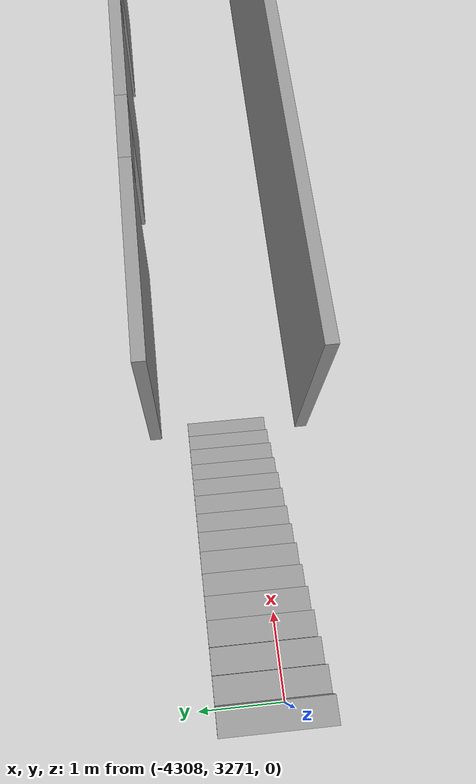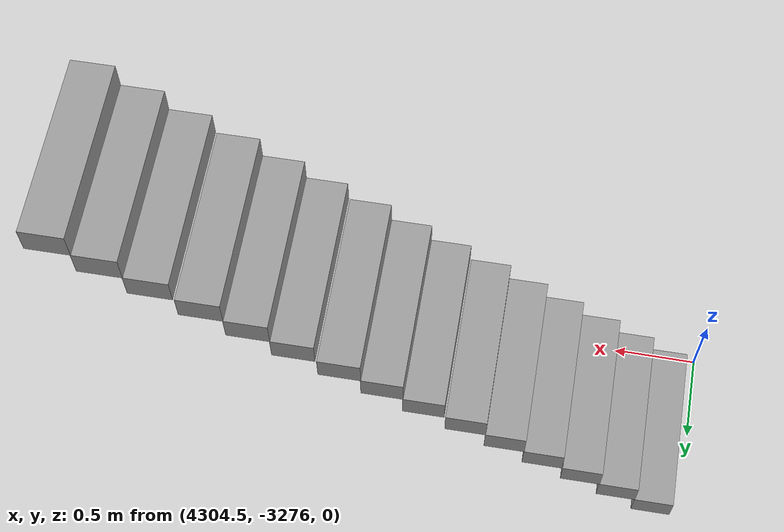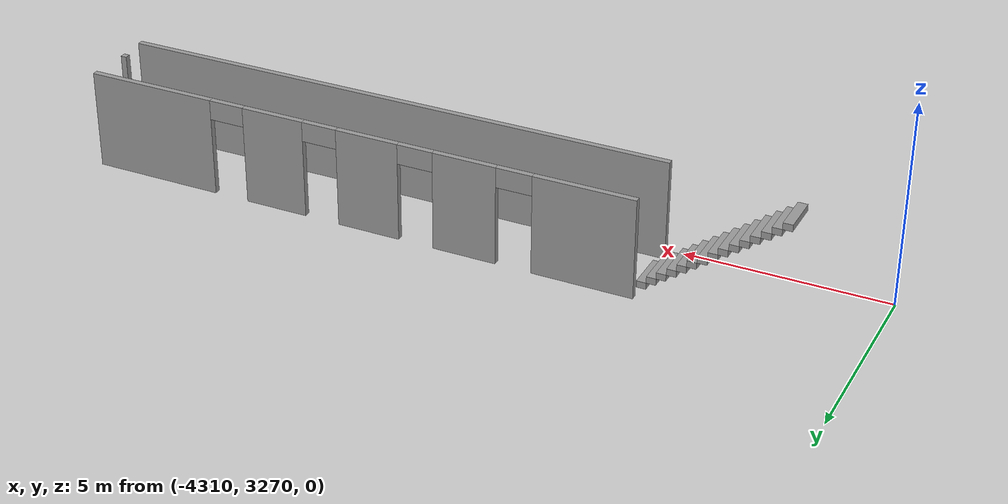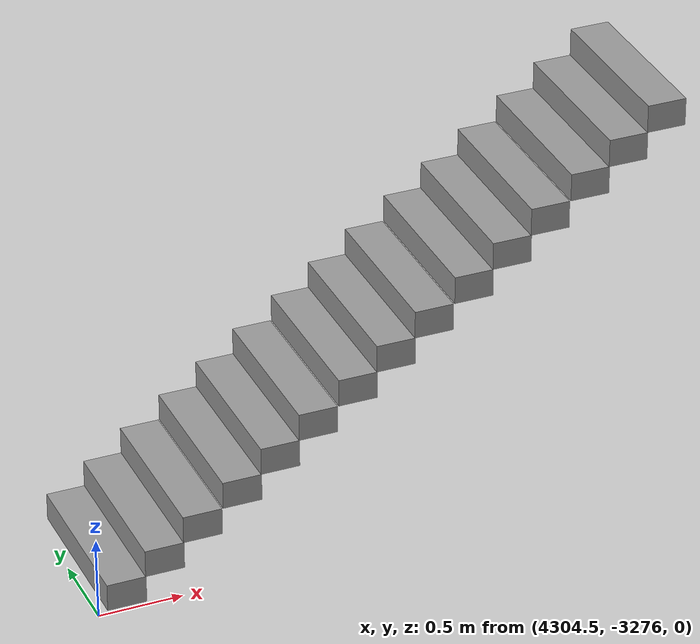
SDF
<?xml version="1.0" ?>
<sdf version="1.6">
  <world name="usta_test">

    <!-- Iluminación y suelo base -->
    <include><uri>model://sun</uri></include>
    <include><uri>model://ground_plane</uri></include>

    <!-- Tu modelo del edificio USTA -->
    <include>
      <uri>model://Prueba1</uri>
      <pose>0 0 0 0 0 0</pose>
    </include>

    <!-- Configuración de física estándar -->
    <physics type="ode">
      <max_step_size>0.001</max_step_size>
      <real_time_update_rate>1000</real_time_update_rate>
    </physics>

  </world>
</sdf>

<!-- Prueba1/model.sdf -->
<sdf version='1.7'>
  <model name='Prueba1'>
    <pose>4294.7 -3275.97 0 0 -0 0</pose>
    <link name='Stairs_2'>
      <visual name='Stairs_2_Visual_0'>
        <pose>-4304.68 3271.32 0.083333 0 -0 -1.5708</pose>
        <geometry>
          <box>
            <size>1 0.233333 0.166667</size>
          </box>
        </geometry>
        <material>
          <script>
            <uri>file://media/materials/scripts/gazebo.material</uri>
            <name>Gazebo/Grey</name>
          </script>
          <ambient>1 1 1 1</ambient>
        </material>
        <meta>
          <layer>0</layer>
        </meta>
      </visual>
      <collision name='Stairs_2_Collision_0'>
        <geometry>
          <box>
            <size>1 0.233333 0.166667</size>
          </box>
        </geometry>
        <pose>-4304.68 3271.32 0.083333 0 -0 -1.5708</pose>
      </collision>
      <visual name='Stairs_2_Visual_1'>
        <pose>-4304.91 3271.32 0.25 0 -0 -1.5708</pose>
        <geometry>
          <box>
            <size>1 0.233333 0.166667</size>
          </box>
        </geometry>
        <material>
          <script>
            <uri>file://media/materials/scripts/gazebo.material</uri>
            <name>Gazebo/Grey</name>
          </script>
          <ambient>1 1 1 1</ambient>
        </material>
        <meta>
          <layer>0</layer>
        </meta>
      </visual>
      <collision name='Stairs_2_Collision_1'>
        <geometry>
          <box>
            <size>1 0.233333 0.166667</size>
          </box>
        </geometry>
        <pose>-4304.91 3271.32 0.25 0 -0 -1.5708</pose>
      </collision>
      <visual name='Stairs_2_Visual_2'>
        <pose>-4305.14 3271.32 0.416667 0 -0 -1.5708</pose>
        <geometry>
          <box>
            <size>1 0.233333 0.166667</size>
          </box>
        </geometry>
        <material>
          <script>
            <uri>file://media/materials/scripts/gazebo.material</uri>
            <name>Gazebo/Grey</name>
          </script>
          <ambient>1 1 1 1</ambient>
        </material>
        <meta>
          <layer>0</layer>
        </meta>
      </visual>
      <collision name='Stairs_2_Collision_2'>
        <geometry>
          <box>
            <size>1 0.233333 0.166667</size>
          </box>
        </geometry>
        <pose>-4305.14 3271.32 0.416667 0 -0 -1.5708</pose>
      </collision>
      <visual name='Stairs_2_Visual_3'>
        <pose>-4305.38 3271.32 0.583333 0 -0 -1.5708</pose>
        <geometry>
          <box>
            <size>1 0.233333 0.166667</size>
          </box>
        </geometry>
        <material>
          <script>
            <uri>file://media/materials/scripts/gazebo.material</uri>
            <name>Gazebo/Grey</name>
          </script>
          <ambient>1 1 1 1</ambient>
        </material>
        <meta>
          <layer>0</layer>
        </meta>
      </visual>
      <collision name='Stairs_2_Collision_3'>
        <geometry>
          <box>
            <size>1 0.233333 0.166667</size>
          </box>
        </geometry>
        <pose>-4305.38 3271.32 0.583333 0 -0 -1.5708</pose>
      </collision>
      <visual name='Stairs_2_Visual_4'>
        <pose>-4305.61 3271.32 0.75 0 -0 -1.5708</pose>
        <geometry>
          <box>
            <size>1 0.233333 0.166667</size>
          </box>
        </geometry>
        <material>
          <script>
            <uri>file://media/materials/scripts/gazebo.material</uri>
            <name>Gazebo/Grey</name>
          </script>
          <ambient>1 1 1 1</ambient>
        </material>
        <meta>
          <layer>0</layer>
        </meta>
      </visual>
      <collision name='Stairs_2_Collision_4'>
        <geometry>
          <box>
            <size>1 0.233333 0.166667</size>
          </box>
        </geometry>
        <pose>-4305.61 3271.32 0.75 0 -0 -1.5708</pose>
      </collision>
      <visual name='Stairs_2_Visual_5'>
        <pose>-4305.84 3271.32 0.916667 0 -0 -1.5708</pose>
        <geometry>
          <box>
            <size>1 0.233333 0.166667</size>
          </box>
        </geometry>
        <material>
          <script>
            <uri>file://media/materials/scripts/gazebo.material</uri>
            <name>Gazebo/Grey</name>
          </script>
          <ambient>1 1 1 1</ambient>
        </material>
        <meta>
          <layer>0</layer>
        </meta>
      </visual>
      <collision name='Stairs_2_Collision_5'>
        <geometry>
          <box>
            <size>1 0.233333 0.166667</size>
          </box>
        </geometry>
        <pose>-4305.84 3271.32 0.916667 0 -0 -1.5708</pose>
      </collision>
      <visual name='Stairs_2_Visual_6'>
        <pose>-4306.08 3271.32 1.08333 0 -0 -1.5708</pose>
        <geometry>
          <box>
            <size>1 0.233333 0.166667</size>
          </box>
        </geometry>
        <material>
          <script>
            <uri>file://media/materials/scripts/gazebo.material</uri>
            <name>Gazebo/Grey</name>
          </script>
          <ambient>1 1 1 1</ambient>
        </material>
        <meta>
          <layer>0</layer>
        </meta>
      </visual>
      <collision name='Stairs_2_Collision_6'>
        <geometry>
          <box>
            <size>1 0.233333 0.166667</size>
          </box>
        </geometry>
        <pose>-4306.08 3271.32 1.08333 0 -0 -1.5708</pose>
      </collision>
      <visual name='Stairs_2_Visual_7'>
        <pose>-4306.31 3271.32 1.25 0 -0 -1.5708</pose>
        <geometry>
          <box>
            <size>1 0.233333 0.166667</size>
          </box>
        </geometry>
        <material>
          <script>
            <uri>file://media/materials/scripts/gazebo.material</uri>
            <name>Gazebo/Grey</name>
          </script>
          <ambient>1 1 1 1</ambient>
        </material>
        <meta>
          <layer>0</layer>
        </meta>
      </visual>
      <collision name='Stairs_2_Collision_7'>
        <geometry>
          <box>
            <size>1 0.233333 0.166667</size>
          </box>
        </geometry>
        <pose>-4306.31 3271.32 1.25 0 -0 -1.5708</pose>
      </collision>
      <visual name='Stairs_2_Visual_8'>
        <pose>-4306.54 3271.32 1.41667 0 -0 -1.5708</pose>
        <geometry>
          <box>
            <size>1 0.233333 0.166667</size>
          </box>
        </geometry>
        <material>
          <script>
            <uri>file://media/materials/scripts/gazebo.material</uri>
            <name>Gazebo/Grey</name>
          </script>
          <ambient>1 1 1 1</ambient>
        </material>
        <meta>
          <layer>0</layer>
        </meta>
      </visual>
      <collision name='Stairs_2_Collision_8'>
        <geometry>
          <box>
            <size>1 0.233333 0.166667</size>
          </box>
        </geometry>
        <pose>-4306.54 3271.32 1.41667 0 -0 -1.5708</pose>
      </collision>
      <visual name='Stairs_2_Visual_9'>
        <pose>-4306.78 3271.32 1.58333 0 -0 -1.5708</pose>
        <geometry>
          <box>
            <size>1 0.233333 0.166667</size>
          </box>
        </geometry>
        <material>
          <script>
            <uri>file://media/materials/scripts/gazebo.material</uri>
            <name>Gazebo/Grey</name>
          </script>
          <ambient>1 1 1 1</ambient>
        </material>
        <meta>
          <layer>0</layer>
        </meta>
      </visual>
      <collision name='Stairs_2_Collision_9'>
        <geometry>
          <box>
            <size>1 0.233333 0.166667</size>
          </box>
        </geometry>
        <pose>-4306.78 3271.32 1.58333 0 -0 -1.5708</pose>
      </collision>
      <visual name='Stairs_2_Visual_10'>
        <pose>-4307.01 3271.32 1.75 0 -0 -1.5708</pose>
        <geometry>
          <box>
            <size>1 0.233333 0.166667</size>
          </box>
        </geometry>
        <material>
          <script>
            <uri>file://media/materials/scripts/gazebo.material</uri>
            <name>Gazebo/Grey</name>
          </script>
          <ambient>1 1 1 1</ambient>
        </material>
        <meta>
          <layer>0</layer>
        </meta>
      </visual>
      <collision name='Stairs_2_Collision_10'>
        <geometry>
          <box>
            <size>1 0.233333 0.166667</size>
          </box>
        </geometry>
        <pose>-4307.01 3271.32 1.75 0 -0 -1.5708</pose>
      </collision>
      <visual name='Stairs_2_Visual_11'>
        <pose>-4307.24 3271.32 1.91667 0 -0 -1.5708</pose>
        <geometry>
          <box>
            <size>1 0.233333 0.166667</size>
          </box>
        </geometry>
        <material>
          <script>
            <uri>file://media/materials/scripts/gazebo.material</uri>
            <name>Gazebo/Grey</name>
          </script>
          <ambient>1 1 1 1</ambient>
        </material>
        <meta>
          <layer>0</layer>
        </meta>
      </visual>
      <collision name='Stairs_2_Collision_11'>
        <geometry>
          <box>
            <size>1 0.233333 0.166667</size>
          </box>
        </geometry>
        <pose>-4307.24 3271.32 1.91667 0 -0 -1.5708</pose>
      </collision>
      <visual name='Stairs_2_Visual_12'>
        <pose>-4307.48 3271.32 2.08333 0 -0 -1.5708</pose>
        <geometry>
          <box>
            <size>1 0.233333 0.166667</size>
          </box>
        </geometry>
        <material>
          <script>
            <uri>file://media/materials/scripts/gazebo.material</uri>
            <name>Gazebo/Grey</name>
          </script>
          <ambient>1 1 1 1</ambient>
        </material>
        <meta>
          <layer>0</layer>
        </meta>
      </visual>
      <collision name='Stairs_2_Collision_12'>
        <geometry>
          <box>
            <size>1 0.233333 0.166667</size>
          </box>
        </geometry>
        <pose>-4307.48 3271.32 2.08333 0 -0 -1.5708</pose>
      </collision>
      <visual name='Stairs_2_Visual_13'>
        <pose>-4307.71 3271.32 2.25 0 -0 -1.5708</pose>
        <geometry>
          <box>
            <size>1 0.233333 0.166667</size>
          </box>
        </geometry>
        <material>
          <script>
            <uri>file://media/materials/scripts/gazebo.material</uri>
            <name>Gazebo/Grey</name>
          </script>
          <ambient>1 1 1 1</ambient>
        </material>
        <meta>
          <layer>0</layer>
        </meta>
      </visual>
      <collision name='Stairs_2_Collision_13'>
        <geometry>
          <box>
            <size>1 0.233333 0.166667</size>
          </box>
        </geometry>
        <pose>-4307.71 3271.32 2.25 0 -0 -1.5708</pose>
      </collision>
      <visual name='Stairs_2_Visual_14'>
        <pose>-4307.94 3271.32 2.41667 0 -0 -1.5708</pose>
        <geometry>
          <box>
            <size>1 0.233333 0.166667</size>
          </box>
        </geometry>
        <material>
          <script>
            <uri>file://media/materials/scripts/gazebo.material</uri>
            <name>Gazebo/Grey</name>
          </script>
          <ambient>1 1 1 1</ambient>
        </material>
        <meta>
          <layer>0</layer>
        </meta>
      </visual>
      <collision name='Stairs_2_Collision_14'>
        <geometry>
          <box>
            <size>1 0.233333 0.166667</size>
          </box>
        </geometry>
        <pose>-4307.94 3271.32 2.41667 0 -0 -1.5708</pose>
      </collision>
    </link>
    <link name='Stairs_4'>
      <visual name='Stairs_4_Visual_0'>
        <pose>4304.68 -3275.47 0.083333 0 -0 1.5708</pose>
        <geometry>
          <box>
            <size>1 0.233333 0.166667</size>
          </box>
        </geometry>
        <material>
          <script>
            <uri>file://media/materials/scripts/gazebo.material</uri>
            <name>Gazebo/Grey</name>
          </script>
          <ambient>1 1 1 1</ambient>
        </material>
        <meta>
          <layer>0</layer>
        </meta>
      </visual>
      <collision name='Stairs_4_Collision_0'>
        <geometry>
          <box>
            <size>1 0.233333 0.166667</size>
          </box>
        </geometry>
        <pose>4304.68 -3275.47 0.083333 0 -0 1.5708</pose>
      </collision>
      <visual name='Stairs_4_Visual_1'>
        <pose>4304.91 -3275.47 0.25 0 -0 1.5708</pose>
        <geometry>
          <box>
            <size>1 0.233333 0.166667</size>
          </box>
        </geometry>
        <material>
          <script>
            <uri>file://media/materials/scripts/gazebo.material</uri>
            <name>Gazebo/Grey</name>
          </script>
          <ambient>1 1 1 1</ambient>
        </material>
        <meta>
          <layer>0</layer>
        </meta>
      </visual>
      <collision name='Stairs_4_Collision_1'>
        <geometry>
          <box>
            <size>1 0.233333 0.166667</size>
          </box>
        </geometry>
        <pose>4304.91 -3275.47 0.25 0 -0 1.5708</pose>
      </collision>
      <visual name='Stairs_4_Visual_2'>
        <pose>4305.14 -3275.47 0.416667 0 -0 1.5708</pose>
        <geometry>
          <box>
            <size>1 0.233333 0.166667</size>
          </box>
        </geometry>
        <material>
          <script>
            <uri>file://media/materials/scripts/gazebo.material</uri>
            <name>Gazebo/Grey</name>
          </script>
          <ambient>1 1 1 1</ambient>
        </material>
        <meta>
          <layer>0</layer>
        </meta>
      </visual>
      <collision name='Stairs_4_Collision_2'>
        <geometry>
          <box>
            <size>1 0.233333 0.166667</size>
          </box>
        </geometry>
        <pose>4305.14 -3275.47 0.416667 0 -0 1.5708</pose>
      </collision>
      <visual name='Stairs_4_Visual_3'>
        <pose>4305.38 -3275.47 0.583333 0 -0 1.5708</pose>
        <geometry>
          <box>
            <size>1 0.233333 0.166667</size>
          </box>
        </geometry>
        <material>
          <script>
            <uri>file://media/materials/scripts/gazebo.material</uri>
            <name>Gazebo/Grey</name>
          </script>
          <ambient>1 1 1 1</ambient>
        </material>
        <meta>
          <layer>0</layer>
        </meta>
      </visual>
      <collision name='Stairs_4_Collision_3'>
        <geometry>
          <box>
            <size>1 0.233333 0.166667</size>
          </box>
        </geometry>
        <pose>4305.38 -3275.47 0.583333 0 -0 1.5708</pose>
      </collision>
      <visual name='Stairs_4_Visual_4'>
        <pose>4305.61 -3275.47 0.75 0 -0 1.5708</pose>
        <geometry>
          <box>
            <size>1 0.233333 0.166667</size>
          </box>
        </geometry>
        <material>
          <script>
            <uri>file://media/materials/scripts/gazebo.material</uri>
            <name>Gazebo/Grey</name>
          </script>
          <ambient>1 1 1 1</ambient>
        </material>
        <meta>
          <layer>0</layer>
        </meta>
      </visual>
      <collision name='Stairs_4_Collision_4'>
        <geometry>
          <box>
            <size>1 0.233333 0.166667</size>
          </box>
        </geometry>
        <pose>4305.61 -3275.47 0.75 0 -0 1.5708</pose>
      </collision>
      <visual name='Stairs_4_Visual_5'>
        <pose>4305.84 -3275.47 0.916667 0 -0 1.5708</pose>
        <geometry>
          <box>
            <size>1 0.233333 0.166667</size>
          </box>
        </geometry>
        <material>
          <script>
            <uri>file://media/materials/scripts/gazebo.material</uri>
            <name>Gazebo/Grey</name>
          </script>
          <ambient>1 1 1 1</ambient>
        </material>
        <meta>
          <layer>0</layer>
        </meta>
      </visual>
      <collision name='Stairs_4_Collision_5'>
        <geometry>
          <box>
            <size>1 0.233333 0.166667</size>
          </box>
        </geometry>
        <pose>4305.84 -3275.47 0.916667 0 -0 1.5708</pose>
      </collision>
      <visual name='Stairs_4_Visual_6'>
        <pose>4306.08 -3275.47 1.08333 0 -0 1.5708</pose>
        <geometry>
          <box>
            <size>1 0.233333 0.166667</size>
          </box>
        </geometry>
        <material>
          <script>
            <uri>file://media/materials/scripts/gazebo.material</uri>
            <name>Gazebo/Grey</name>
          </script>
          <ambient>1 1 1 1</ambient>
        </material>
        <meta>
          <layer>0</layer>
        </meta>
      </visual>
      <collision name='Stairs_4_Collision_6'>
        <geometry>
          <box>
            <size>1 0.233333 0.166667</size>
          </box>
        </geometry>
        <pose>4306.08 -3275.47 1.08333 0 -0 1.5708</pose>
      </collision>
      <visual name='Stairs_4_Visual_7'>
        <pose>4306.31 -3275.47 1.25 0 -0 1.5708</pose>
        <geometry>
          <box>
            <size>1 0.233333 0.166667</size>
          </box>
        </geometry>
        <material>
          <script>
            <uri>file://media/materials/scripts/gazebo.material</uri>
            <name>Gazebo/Grey</name>
          </script>
          <ambient>1 1 1 1</ambient>
        </material>
        <meta>
          <layer>0</layer>
        </meta>
      </visual>
      <collision name='Stairs_4_Collision_7'>
        <geometry>
          <box>
            <size>1 0.233333 0.166667</size>
          </box>
        </geometry>
        <pose>4306.31 -3275.47 1.25 0 -0 1.5708</pose>
      </collision>
      <visual name='Stairs_4_Visual_8'>
        <pose>4306.54 -3275.47 1.41667 0 -0 1.5708</pose>
        <geometry>
          <box>
            <size>1 0.233333 0.166667</size>
          </box>
        </geometry>
        <material>
          <script>
            <uri>file://media/materials/scripts/gazebo.material</uri>
            <name>Gazebo/Grey</name>
          </script>
          <ambient>1 1 1 1</ambient>
        </material>
        <meta>
          <layer>0</layer>
        </meta>
      </visual>
      <collision name='Stairs_4_Collision_8'>
        <geometry>
          <box>
            <size>1 0.233333 0.166667</size>
          </box>
        </geometry>
        <pose>4306.54 -3275.47 1.41667 0 -0 1.5708</pose>
      </collision>
      <visual name='Stairs_4_Visual_9'>
        <pose>4306.78 -3275.47 1.58333 0 -0 1.5708</pose>
        <geometry>
          <box>
            <size>1 0.233333 0.166667</size>
          </box>
        </geometry>
        <material>
          <script>
            <uri>file://media/materials/scripts/gazebo.material</uri>
            <name>Gazebo/Grey</name>
          </script>
          <ambient>1 1 1 1</ambient>
        </material>
        <meta>
          <layer>0</layer>
        </meta>
      </visual>
      <collision name='Stairs_4_Collision_9'>
        <geometry>
          <box>
            <size>1 0.233333 0.166667</size>
          </box>
        </geometry>
        <pose>4306.78 -3275.47 1.58333 0 -0 1.5708</pose>
      </collision>
      <visual name='Stairs_4_Visual_10'>
        <pose>4307.01 -3275.47 1.75 0 -0 1.5708</pose>
        <geometry>
          <box>
            <size>1 0.233333 0.166667</size>
          </box>
        </geometry>
        <material>
          <script>
            <uri>file://media/materials/scripts/gazebo.material</uri>
            <name>Gazebo/Grey</name>
          </script>
          <ambient>1 1 1 1</ambient>
        </material>
        <meta>
          <layer>0</layer>
        </meta>
      </visual>
      <collision name='Stairs_4_Collision_10'>
        <geometry>
          <box>
            <size>1 0.233333 0.166667</size>
          </box>
        </geometry>
        <pose>4307.01 -3275.47 1.75 0 -0 1.5708</pose>
      </collision>
      <visual name='Stairs_4_Visual_11'>
        <pose>4307.24 -3275.47 1.91667 0 -0 1.5708</pose>
        <geometry>
          <box>
            <size>1 0.233333 0.166667</size>
          </box>
        </geometry>
        <material>
          <script>
            <uri>file://media/materials/scripts/gazebo.material</uri>
            <name>Gazebo/Grey</name>
          </script>
          <ambient>1 1 1 1</ambient>
        </material>
        <meta>
          <layer>0</layer>
        </meta>
      </visual>
      <collision name='Stairs_4_Collision_11'>
        <geometry>
          <box>
            <size>1 0.233333 0.166667</size>
          </box>
        </geometry>
        <pose>4307.24 -3275.47 1.91667 0 -0 1.5708</pose>
      </collision>
      <visual name='Stairs_4_Visual_12'>
        <pose>4307.48 -3275.47 2.08333 0 -0 1.5708</pose>
        <geometry>
          <box>
            <size>1 0.233333 0.166667</size>
          </box>
        </geometry>
        <material>
          <script>
            <uri>file://media/materials/scripts/gazebo.material</uri>
            <name>Gazebo/Grey</name>
          </script>
          <ambient>1 1 1 1</ambient>
        </material>
        <meta>
          <layer>0</layer>
        </meta>
      </visual>
      <collision name='Stairs_4_Collision_12'>
        <geometry>
          <box>
            <size>1 0.233333 0.166667</size>
          </box>
        </geometry>
        <pose>4307.48 -3275.47 2.08333 0 -0 1.5708</pose>
      </collision>
      <visual name='Stairs_4_Visual_13'>
        <pose>4307.71 -3275.47 2.25 0 -0 1.5708</pose>
        <geometry>
          <box>
            <size>1 0.233333 0.166667</size>
          </box>
        </geometry>
        <material>
          <script>
            <uri>file://media/materials/scripts/gazebo.material</uri>
            <name>Gazebo/Grey</name>
          </script>
          <ambient>1 1 1 1</ambient>
        </material>
        <meta>
          <layer>0</layer>
        </meta>
      </visual>
      <collision name='Stairs_4_Collision_13'>
        <geometry>
          <box>
            <size>1 0.233333 0.166667</size>
          </box>
        </geometry>
        <pose>4307.71 -3275.47 2.25 0 -0 1.5708</pose>
      </collision>
      <visual name='Stairs_4_Visual_14'>
        <pose>4307.94 -3275.47 2.41667 0 -0 1.5708</pose>
        <geometry>
          <box>
            <size>1 0.233333 0.166667</size>
          </box>
        </geometry>
        <material>
          <script>
            <uri>file://media/materials/scripts/gazebo.material</uri>
            <name>Gazebo/Grey</name>
          </script>
          <ambient>1 1 1 1</ambient>
        </material>
        <meta>
          <layer>0</layer>
        </meta>
      </visual>
      <collision name='Stairs_4_Collision_14'>
        <geometry>
          <box>
            <size>1 0.233333 0.166667</size>
          </box>
        </geometry>
        <pose>4307.94 -3275.47 2.41667 0 -0 1.5708</pose>
      </collision>
    </link>
    <link name='Wall_12'>
      <collision name='Wall_12_Collision'>
        <geometry>
          <box>
            <size>0.15 0.15 2.5</size>
          </box>
        </geometry>
        <pose>0 0 1.25 0 -0 0</pose>
      </collision>
      <visual name='Wall_12_Visual'>
        <pose>0 0 1.25 0 -0 0</pose>
        <geometry>
          <box>
            <size>0.15 0.15 2.5</size>
          </box>
        </geometry>
        <material>
          <script>
            <uri>file://media/materials/scripts/gazebo.material</uri>
            <name>Gazebo/Grey</name>
          </script>
          <ambient>1 1 1 1</ambient>
        </material>
        <meta>
          <layer>0</layer>
        </meta>
      </visual>
      <pose>-4290.55 3271.14 0 0 -0 0</pose>
    </link>
    <link name='Wall_15'>
      <collision name='Wall_15_Collision'>
        <geometry>
          <box>
            <size>14.25 0.15 2.5</size>
          </box>
        </geometry>
        <pose>0 0 1.25 0 -0 0</pose>
      </collision>
      <visual name='Wall_15_Visual'>
        <pose>0 0 1.25 0 -0 0</pose>
        <geometry>
          <box>
            <size>14.25 0.15 2.5</size>
          </box>
        </geometry>
        <material>
          <script>
            <uri>file://media/materials/scripts/gazebo.material</uri>
            <name>Gazebo/Grey</name>
          </script>
          <ambient>1 1 1 1</ambient>
        </material>
        <meta>
          <layer>0</layer>
        </meta>
      </visual>
      <pose>-4297.56 3270.33 0 0 -0 0</pose>
    </link>
    <link name='Wall_8'>
      <pose>-4297.56 3272.25 0 0 -0 0</pose>
      <visual name='Wall_8_Visual_0'>
        <pose>-5.875 0 1.25 0 -0 0</pose>
        <geometry>
          <box>
            <size>2.5 0.15 2.5</size>
          </box>
        </geometry>
        <material>
          <script>
            <uri>file://media/materials/scripts/gazebo.material</uri>
            <name>Gazebo/Grey</name>
          </script>
          <ambient>1 1 1 1</ambient>
        </material>
        <meta>
          <layer>0</layer>
        </meta>
      </visual>
      <collision name='Wall_8_Collision_0'>
        <geometry>
          <box>
            <size>2.5 0.15 2.5</size>
          </box>
        </geometry>
        <pose>-5.875 0 1.25 0 -0 0</pose>
      </collision>
      <visual name='Wall_8_Visual_1'>
        <pose>-2.92725 0 1.25 0 -0 0</pose>
        <geometry>
          <box>
            <size>1.5955 0.15 2.5</size>
          </box>
        </geometry>
        <material>
          <script>
            <uri>file://media/materials/scripts/gazebo.material</uri>
            <name>Gazebo/Grey</name>
          </script>
          <ambient>1 1 1 1</ambient>
        </material>
        <meta>
          <layer>0</layer>
        </meta>
      </visual>
      <collision name='Wall_8_Collision_1'>
        <geometry>
          <box>
            <size>1.5955 0.15 2.5</size>
          </box>
        </geometry>
        <pose>-2.92725 0 1.25 0 -0 0</pose>
      </collision>
      <visual name='Wall_8_Visual_2'>
        <pose>-0.426 0 1.25 0 -0 0</pose>
        <geometry>
          <box>
            <size>1.607 0.15 2.5</size>
          </box>
        </geometry>
        <material>
          <script>
            <uri>file://media/materials/scripts/gazebo.material</uri>
            <name>Gazebo/Grey</name>
          </script>
          <ambient>1 1 1 1</ambient>
        </material>
        <meta>
          <layer>0</layer>
        </meta>
      </visual>
      <collision name='Wall_8_Collision_2'>
        <geometry>
          <box>
            <size>1.607 0.15 2.5</size>
          </box>
        </geometry>
        <pose>-0.426 0 1.25 0 -0 0</pose>
      </collision>
      <visual name='Wall_8_Visual_3'>
        <pose>2.08675 0 1.25 0 -0 0</pose>
        <geometry>
          <box>
            <size>1.6185 0.15 2.5</size>
          </box>
        </geometry>
        <material>
          <script>
            <uri>file://media/materials/scripts/gazebo.material</uri>
            <name>Gazebo/Grey</name>
          </script>
          <ambient>1 1 1 1</ambient>
        </material>
        <meta>
          <layer>0</layer>
        </meta>
      </visual>
      <collision name='Wall_8_Collision_3'>
        <geometry>
          <box>
            <size>1.6185 0.15 2.5</size>
          </box>
        </geometry>
        <pose>2.08675 0 1.25 0 -0 0</pose>
      </collision>
      <visual name='Wall_8_Visual_4'>
        <pose>5.4605 0 1.25 0 -0 0</pose>
        <geometry>
          <box>
            <size>3.329 0.15 2.5</size>
          </box>
        </geometry>
        <material>
          <script>
            <uri>file://media/materials/scripts/gazebo.material</uri>
            <name>Gazebo/Grey</name>
          </script>
          <ambient>1 1 1 1</ambient>
        </material>
        <meta>
          <layer>0</layer>
        </meta>
      </visual>
      <collision name='Wall_8_Collision_4'>
        <geometry>
          <box>
            <size>3.329 0.15 2.5</size>
          </box>
        </geometry>
        <pose>5.4605 0 1.25 0 -0 0</pose>
      </collision>
      <visual name='Wall_8_Visual_5'>
        <pose>-4.175 0 2.25 0 -0 0</pose>
        <geometry>
          <box>
            <size>0.9 0.15 0.5</size>
          </box>
        </geometry>
        <material>
          <script>
            <uri>file://media/materials/scripts/gazebo.material</uri>
            <name>Gazebo/Grey</name>
          </script>
          <ambient>1 1 1 1</ambient>
        </material>
        <meta>
          <layer>0</layer>
        </meta>
      </visual>
      <collision name='Wall_8_Collision_5'>
        <geometry>
          <box>
            <size>0.9 0.15 0.5</size>
          </box>
        </geometry>
        <pose>-4.175 0 2.25 0 -0 0</pose>
      </collision>
      <visual name='Wall_8_Visual_6'>
        <pose>-1.6795 0 2.25 0 -0 0</pose>
        <geometry>
          <box>
            <size>0.9 0.15 0.5</size>
          </box>
        </geometry>
        <material>
          <script>
            <uri>file://media/materials/scripts/gazebo.material</uri>
            <name>Gazebo/Grey</name>
          </script>
          <ambient>1 1 1 1</ambient>
        </material>
        <meta>
          <layer>0</layer>
        </meta>
      </visual>
      <collision name='Wall_8_Collision_6'>
        <geometry>
          <box>
            <size>0.9 0.15 0.5</size>
          </box>
        </geometry>
        <pose>-1.6795 0 2.25 0 -0 0</pose>
      </collision>
      <visual name='Wall_8_Visual_7'>
        <pose>0.8275 0 2.25 0 -0 0</pose>
        <geometry>
          <box>
            <size>0.9 0.15 0.5</size>
          </box>
        </geometry>
        <material>
          <script>
            <uri>file://media/materials/scripts/gazebo.material</uri>
            <name>Gazebo/Grey</name>
          </script>
          <ambient>1 1 1 1</ambient>
        </material>
        <meta>
          <layer>0</layer>
        </meta>
      </visual>
      <collision name='Wall_8_Collision_7'>
        <geometry>
          <box>
            <size>0.9 0.15 0.5</size>
          </box>
        </geometry>
        <pose>0.8275 0 2.25 0 -0 0</pose>
      </collision>
      <visual name='Wall_8_Visual_8'>
        <pose>3.346 0 2.25 0 -0 0</pose>
        <geometry>
          <box>
            <size>0.9 0.15 0.5</size>
          </box>
        </geometry>
        <material>
          <script>
            <uri>file://media/materials/scripts/gazebo.material</uri>
            <name>Gazebo/Grey</name>
          </script>
          <ambient>1 1 1 1</ambient>
        </material>
        <meta>
          <layer>0</layer>
        </meta>
      </visual>
      <collision name='Wall_8_Collision_8'>
        <geometry>
          <box>
            <size>0.9 0.15 0.5</size>
          </box>
        </geometry>
        <pose>3.346 0 2.25 0 -0 0</pose>
      </collision>
    </link>
    <static>1</static>
  </model>
</sdf>
